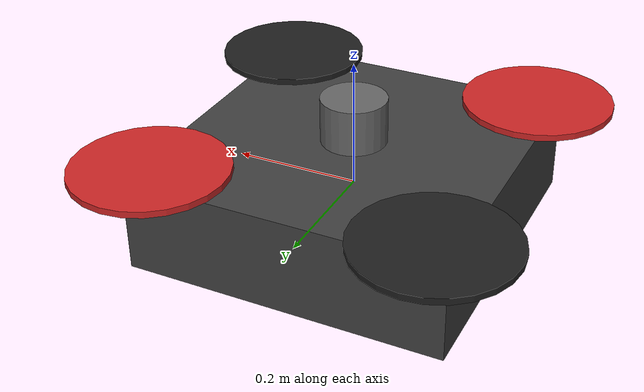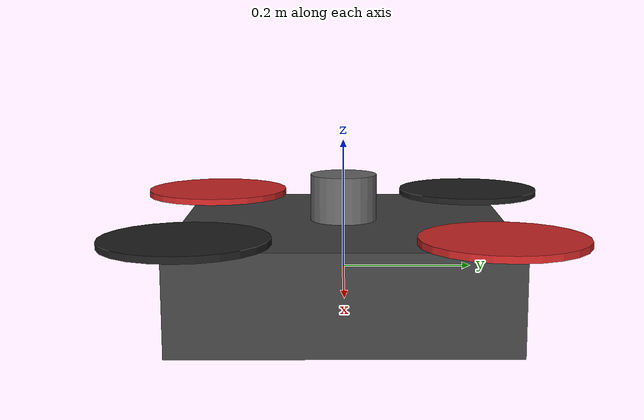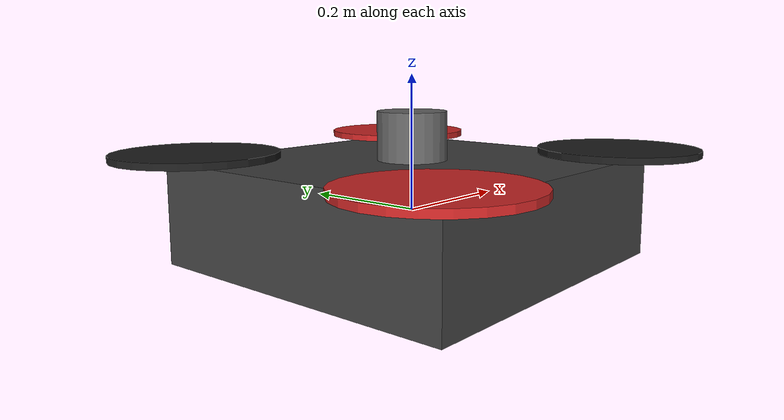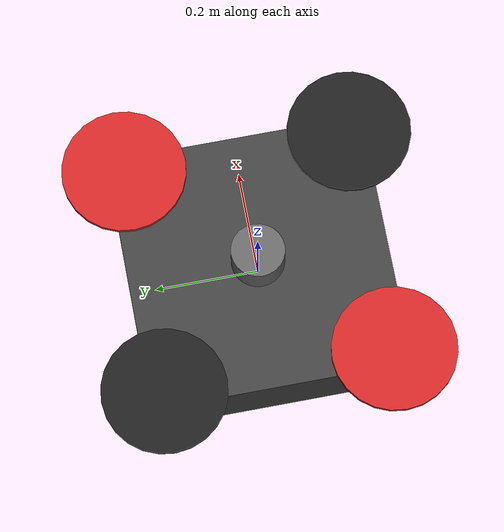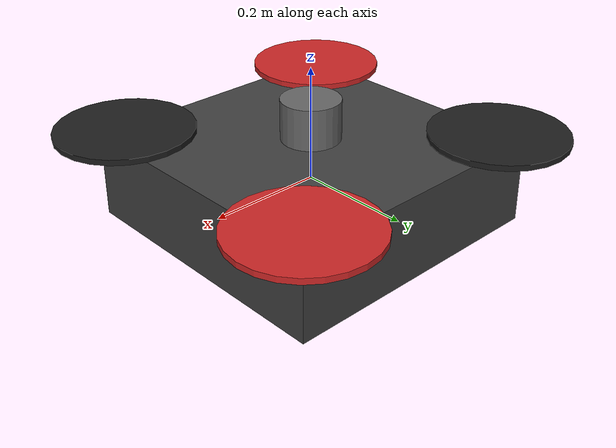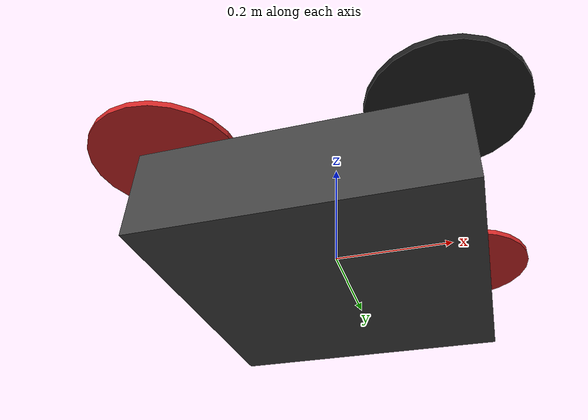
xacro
<?xml version="1.0"?>
<robot name="cave_drone" xmlns:xacro="http://www.ros.org/wiki/xacro">

  <!-- ===================================================================
       PROPERTIES
       =================================================================== -->
  <xacro:property name="body_mass"   value="1.5"/>
  <xacro:property name="body_x"      value="0.5"/>
  <xacro:property name="body_y"      value="0.5"/>
  <xacro:property name="body_z"      value="0.15"/>

  <xacro:property name="rotor_radius"    value="0.12"/>
  <xacro:property name="rotor_thickness" value="0.01"/>
  <xacro:property name="rotor_mass"      value="0.05"/>
  <!-- Rotor arm length from body centre to rotor centre -->
  <xacro:property name="arm_length"      value="0.22"/>

  <!-- Camera pitch down (10° = 0.1745 rad) -->
  <xacro:property name="cam_pitch" value="-0.1745329"/>

  <!-- ===================================================================
       INERTIA MACROS
       =================================================================== -->

  <!-- Solid box inertia -->
  <xacro:macro name="box_inertia" params="m x y z">
    <inertia
      ixx="${m*(y*y+z*z)/12.0}"
      ixy="0" ixz="0"
      iyy="${m*(x*x+z*z)/12.0}"
      iyz="0"
      izz="${m*(x*x+y*y)/12.0}"/>
  </xacro:macro>

  <!-- Solid cylinder inertia (axis along Z) -->
  <xacro:macro name="cylinder_inertia" params="m r h">
    <inertia
      ixx="${m*(3*r*r+h*h)/12.0}"
      ixy="0" ixz="0"
      iyy="${m*(3*r*r+h*h)/12.0}"
      iyz="0"
      izz="${m*r*r/2.0}"/>
  </xacro:macro>

  <!-- Small sphere inertia (for sensor links) -->
  <xacro:macro name="sphere_inertia" params="m r">
    <inertia
      ixx="${2.0*m*r*r/5.0}"
      ixy="0" ixz="0"
      iyy="${2.0*m*r*r/5.0}"
      iyz="0"
      izz="${2.0*m*r*r/5.0}"/>
  </xacro:macro>

  <xacro:macro name="rotor" params="id x y color">
    <link name="rotor_${id}">
      <visual>
        <origin xyz="0 0 0" rpy="0 0 0"/>
        <geometry>
          <cylinder radius="${rotor_radius}" length="${rotor_thickness}"/>
        </geometry>
        <material name="${color}"/>
      </visual>
      <collision>
        <origin xyz="0 0 0" rpy="0 0 0"/>
        <geometry>
          <cylinder radius="${rotor_radius}" length="${rotor_thickness}"/>
        </geometry>
      </collision>
      <inertial>
        <mass value="${rotor_mass}"/>
        <origin xyz="0 0 0" rpy="0 0 0"/>
        <xacro:cylinder_inertia m="${rotor_mass}" r="${rotor_radius}" h="${rotor_thickness}"/>
      </inertial>
    </link>

    <joint name="rotor_${id}_joint" type="continuous">
      <parent link="base_link"/>
      <child  link="rotor_${id}"/>
      <origin xyz="${x} ${y} ${body_z/2.0 + 0.01}" rpy="0 0 0"/>
      <axis xyz="0 0 1"/>
      <dynamics damping="0.001" friction="0.001"/>
    </joint>

    <!-- Gazebo visual colour -->
    <gazebo reference="rotor_${id}">
      <material>Gazebo/${color}</material>
    </gazebo>
  </xacro:macro>

  <!-- ===================================================================
       BASE LINK  (quadrotor body)
       =================================================================== -->
  <link name="base_link">
    <visual>
      <origin xyz="0 0 0" rpy="0 0 0"/>
      <geometry>
        <box size="${body_x} ${body_y} ${body_z}"/>
      </geometry>
      <material name="DarkGray">
        <color rgba="0.25 0.25 0.25 1.0"/>
      </material>
    </visual>
    <collision>
      <origin xyz="0 0 0" rpy="0 0 0"/>
      <geometry>
        <box size="${body_x} ${body_y} ${body_z}"/>
      </geometry>
    </collision>
    <inertial>
      <mass value="${body_mass}"/>
      <origin xyz="0 0 0" rpy="0 0 0"/>
      <xacro:box_inertia m="${body_mass}" x="${body_x}" y="${body_y}" z="${body_z}"/>
    </inertial>
  </link>

  <gazebo reference="base_link">
    <material>Gazebo/DarkGray</material>
  </gazebo>

  <xacro:rotor id="0" x=" ${arm_length}" y=" ${arm_length}" color="Red"/>
  <xacro:rotor id="1" x="-${arm_length}" y="-${arm_length}" color="Red"/>
  <xacro:rotor id="2" x=" ${arm_length}" y="-${arm_length}" color="Black"/>
  <xacro:rotor id="3" x="-${arm_length}" y=" ${arm_length}" color="Black"/>

  <link name="lidar_link">
    <visual>
      <origin xyz="0 0 0" rpy="0 0 0"/>
      <geometry>
        <cylinder radius="0.0516" length="0.0717"/>
      </geometry>
      <material name="LidarGray">
        <color rgba="0.4 0.4 0.4 1.0"/>
      </material>
    </visual>
    <collision>
      <origin xyz="0 0 0" rpy="0 0 0"/>
      <geometry>
        <cylinder radius="0.0516" length="0.0717"/>
      </geometry>
    </collision>
    <inertial>
      <mass value="0.83"/>
      <origin xyz="0 0 0" rpy="0 0 0"/>
      <xacro:cylinder_inertia m="0.83" r="0.0516" h="0.0717"/>
    </inertial>
  </link>

  <joint name="lidar_joint" type="fixed">
    <parent link="base_link"/>
    <child  link="lidar_link"/>
    <origin xyz="0 0 ${body_z/2.0 + 0.036}" rpy="0 0 0"/>
  </joint>

  <!-- Gazebo Harmonic gpu_lidar sensor -->
  <gazebo reference="lidar_link">
    <sensor name="lidar" type="gpu_lidar">
      <update_rate>10</update_rate>
      <topic>/drone/lidar/points</topic>
      <gz_frame_id>lidar_link</gz_frame_id>
      <lidar>
        <scan>
          <horizontal>
            <samples>1800</samples>
            <resolution>1</resolution>
            <min_angle>-3.14159265</min_angle>
            <max_angle> 3.14159265</max_angle>
          </horizontal>
          <vertical>
            <samples>16</samples>
            <resolution>1</resolution>
            <min_angle>-0.26179939</min_angle>  <!-- -15 deg -->
            <max_angle> 0.26179939</max_angle>  <!--  15 deg -->
          </vertical>
        </scan>
        <range>
          <min>0.1</min>
          <max>100.0</max>
          <resolution>0.001</resolution>
        </range>
        <noise>
          <type>gaussian</type>
          <mean>0.0</mean>
          <stddev>0.01</stddev>
        </noise>
      </lidar>
      <always_on>true</always_on>
      <visualize>false</visualize>
    </sensor>
  </gazebo>

  <link name="depth_camera_link">
    <visual>
      <origin xyz="0 0 0" rpy="0 0 0"/>
      <geometry>
        <box size="0.04 0.09 0.025"/>
      </geometry>
      <material name="CameraBlack">
        <color rgba="0.1 0.1 0.1 1.0"/>
      </material>
    </visual>
    <collision>
      <origin xyz="0 0 0" rpy="0 0 0"/>
      <geometry>
        <box size="0.04 0.09 0.025"/>
      </geometry>
    </collision>
    <inertial>
      <mass value="0.07"/>
      <origin xyz="0 0 0" rpy="0 0 0"/>
      <xacro:box_inertia m="0.07" x="0.04" y="0.09" z="0.025"/>
    </inertial>
  </link>

  <joint name="depth_camera_joint" type="fixed">
    <parent link="base_link"/>
    <child  link="depth_camera_link"/>
    <!-- 0.15 m forward, 0.02 m below body centre, pitched 10° downward -->
    <origin xyz="0.15 0 -0.02" rpy="0 ${cam_pitch} 0"/>
  </joint>

  <!-- Gazebo Harmonic depth_camera sensor -->
  <gazebo reference="depth_camera_link">
    <sensor name="depth_camera" type="depth_camera">
      <update_rate>15</update_rate>
      <topic>/drone/depth_camera</topic>
      <gz_frame_id>depth_camera_link</gz_frame_id>
      <camera>
        <horizontal_fov>1.5184</horizontal_fov>  <!-- 87 deg -->
        <image>
          <width>640</width>
          <height>480</height>
          <format>R_FLOAT32</format>
        </image>
        <clip>
          <near>0.1</near>
          <far>10.0</far>
        </clip>
        <noise>
          <type>gaussian</type>
          <mean>0.0</mean>
          <stddev>0.01</stddev>
        </noise>
      </camera>
      <always_on>true</always_on>
      <visualize>false</visualize>
    </sensor>
  </gazebo>

  <!-- ===================================================================
       IMU LINK — at centre of mass
       =================================================================== -->
  <link name="imu_link">
    <visual>
      <origin xyz="0 0 0" rpy="0 0 0"/>
      <geometry>
        <box size="0.02 0.02 0.01"/>
      </geometry>
      <material name="ImuGreen">
        <color rgba="0.0 0.8 0.0 1.0"/>
      </material>
    </visual>
    <collision>
      <origin xyz="0 0 0" rpy="0 0 0"/>
      <geometry>
        <box size="0.02 0.02 0.01"/>
      </geometry>
    </collision>
    <inertial>
      <mass value="0.015"/>
      <origin xyz="0 0 0" rpy="0 0 0"/>
      <xacro:box_inertia m="0.015" x="0.02" y="0.02" z="0.01"/>
    </inertial>
  </link>

  <joint name="imu_joint" type="fixed">
    <parent link="base_link"/>
    <child  link="imu_link"/>
    <origin xyz="0 0 0" rpy="0 0 0"/>
  </joint>

  <!-- Gazebo Harmonic imu sensor -->
  <gazebo reference="imu_link">
    <sensor name="imu" type="imu">
      <update_rate>200</update_rate>
      <topic>/drone/imu</topic>
      <gz_frame_id>imu_link</gz_frame_id>
      <imu>
        <angular_velocity>
          <x>
            <noise type="gaussian">
              <mean>0.0</mean>
              <stddev>0.01</stddev>
              <bias_mean>0.0</bias_mean>
              <bias_stddev>0.001</bias_stddev>
            </noise>
          </x>
          <y>
            <noise type="gaussian">
              <mean>0.0</mean>
              <stddev>0.01</stddev>
              <bias_mean>0.0</bias_mean>
              <bias_stddev>0.001</bias_stddev>
            </noise>
          </y>
          <z>
            <noise type="gaussian">
              <mean>0.0</mean>
              <stddev>0.01</stddev>
              <bias_mean>0.0</bias_mean>
              <bias_stddev>0.001</bias_stddev>
            </noise>
          </z>
        </angular_velocity>
        <linear_acceleration>
          <x>
            <noise type="gaussian">
              <mean>0.0</mean>
              <stddev>0.1</stddev>
              <bias_mean>0.0</bias_mean>
              <bias_stddev>0.01</bias_stddev>
            </noise>
          </x>
          <y>
            <noise type="gaussian">
              <mean>0.0</mean>
              <stddev>0.1</stddev>
              <bias_mean>0.0</bias_mean>
              <bias_stddev>0.01</bias_stddev>
            </noise>
          </y>
          <z>
            <noise type="gaussian">
              <mean>0.0</mean>
              <stddev>0.1</stddev>
              <bias_mean>0.0</bias_mean>
              <bias_stddev>0.01</bias_stddev>
            </noise>
          </z>
        </linear_acceleration>
      </imu>
      <always_on>true</always_on>
    </sensor>
  </gazebo>

  <gazebo>
    <plugin
      filename="gz-sim-apply-joint-force-system"
      name="gz::sim::systems::ApplyJointForce">
    </plugin>
  </gazebo>

  <!-- Allows external wrench application for the velocity controller -->
  <gazebo>
    <plugin
      filename="gz-sim-apply-link-wrench-system"
      name="gz::sim::systems::ApplyLinkWrench">
    </plugin>
  </gazebo>

</robot>
